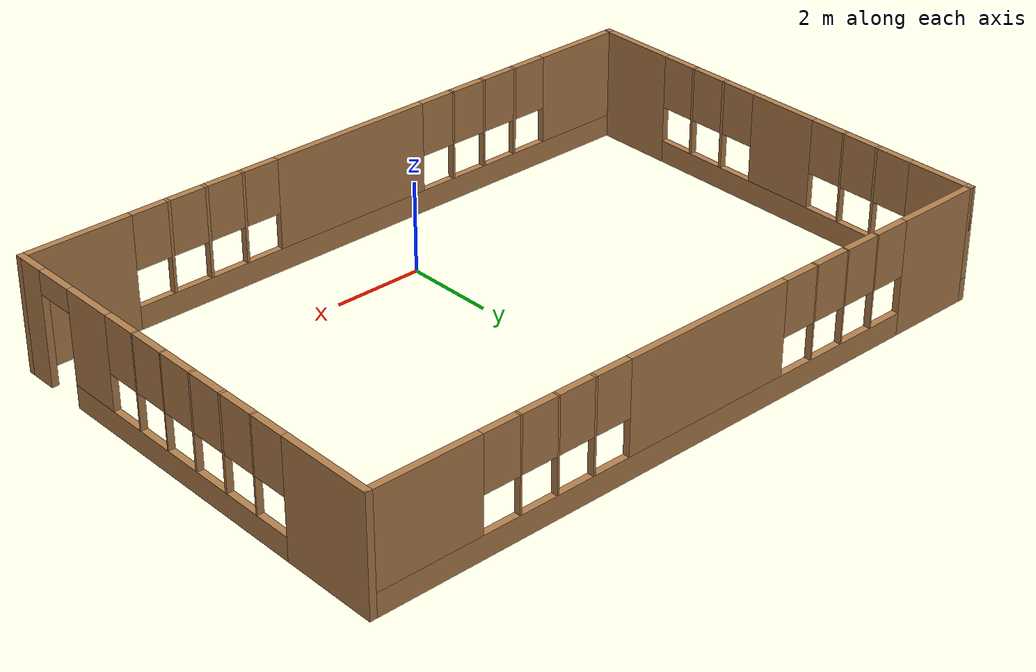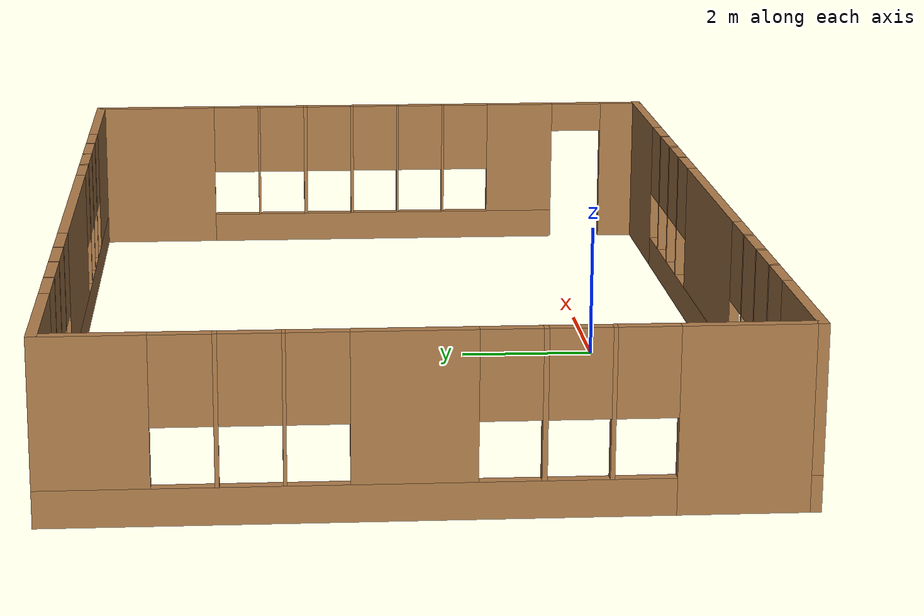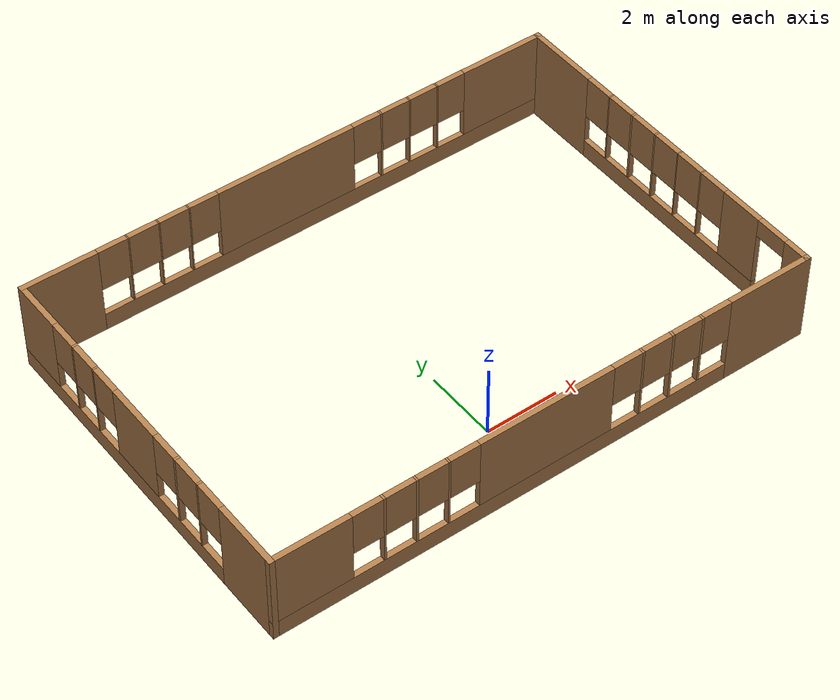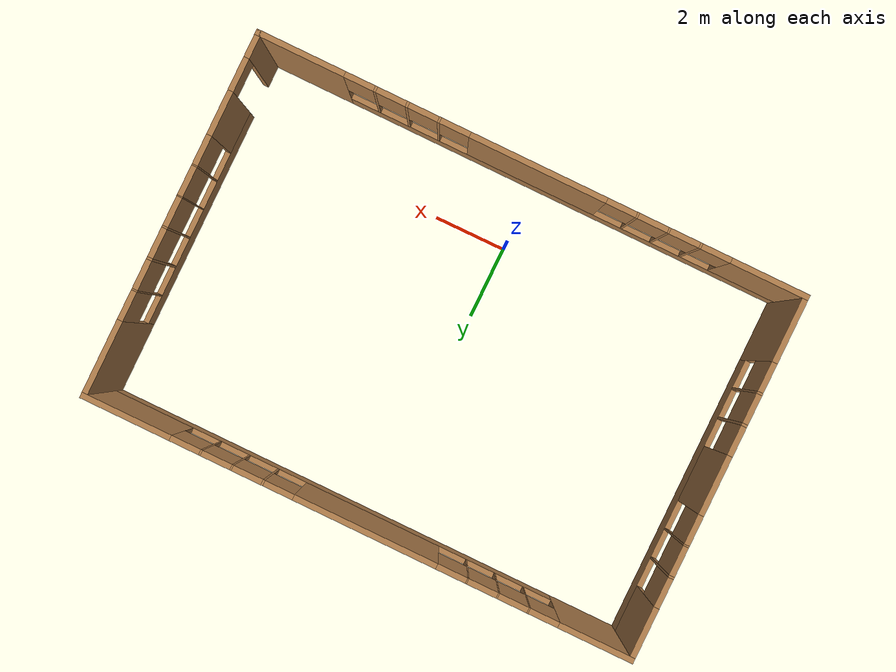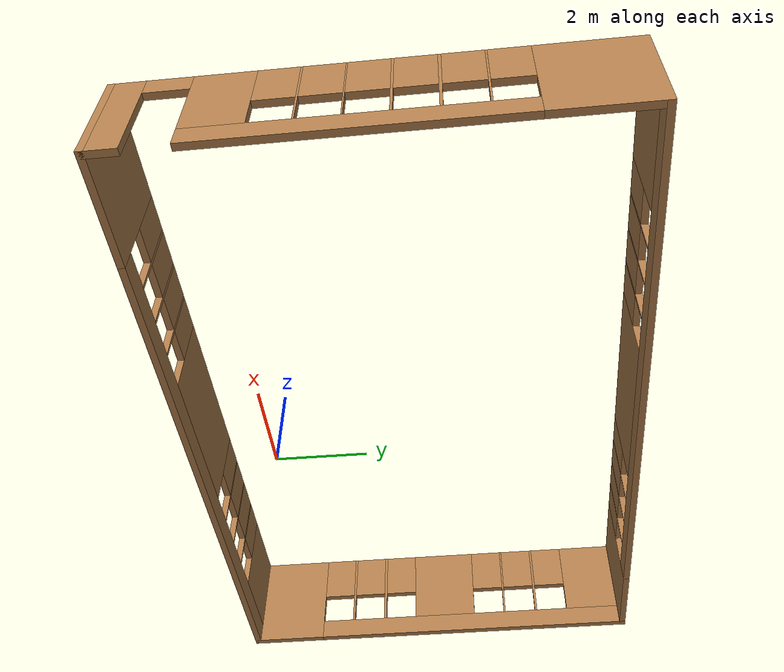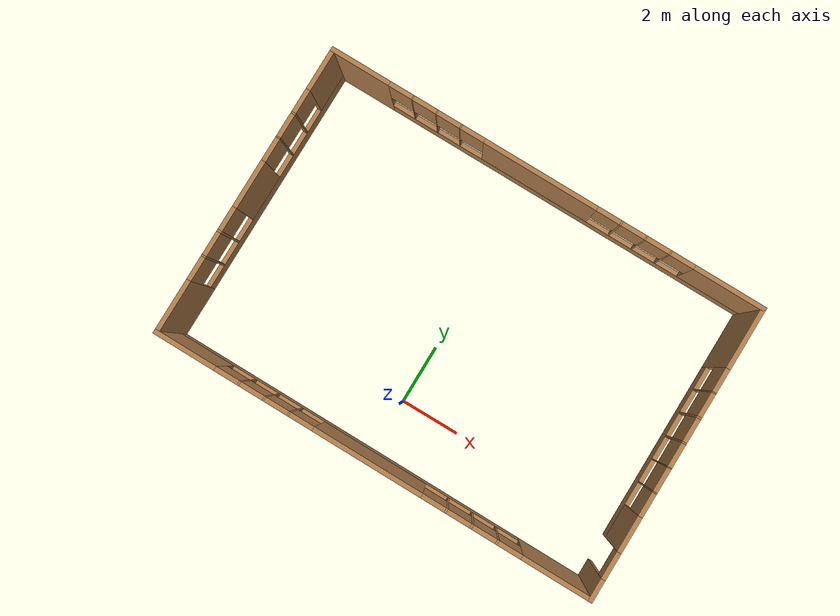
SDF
<?xml version='1.0'?>
<sdf version='1.6'>
  <model name='Building_Structure'>
    <pose frame=''>0.275 3.045 0 0 -0 0</pose>
    <link name='Wall_0'>
      <pose frame=''>0 4.925 0 0 -0 0</pose>
      <visual name='Wall_0_Visual_0'>
        <pose frame=''>-6.4786 0 1.25 0 -0 0</pose>
        <geometry>
          <box>
            <size>2.04279 0.15 2.5</size>
          </box>
        </geometry>
        <material>
          <script>
            <uri>file://media/materials/scripts/gazebo.material</uri>
            <name>Gazebo/Wood</name>
          </script>
          <ambient>0.45098 0.823529 0.0862745 1</ambient>
        </material>
        <meta>
          <layer>0</layer>
        </meta>
      </visual>
      <collision name='Wall_0_Collision_0'>
        <geometry>
          <box>
            <size>2.04279 0.15 2.5</size>
          </box>
        </geometry>
        <pose frame=''>-6.4786 0 1.25 0 -0 0</pose>
      </collision>
      <visual name='Wall_0_Visual_1'>
        <pose frame=''>1.0214 0 0.25 0 -0 0</pose>
        <geometry>
          <box>
            <size>12.9572 0.15 0.5</size>
          </box>
        </geometry>
        <material>
          <script>
            <uri>file://media/materials/scripts/gazebo.material</uri>
            <name>Gazebo/Wood</name>
          </script>
          <ambient>0.45098 0.823529 0.0862745 1</ambient>
        </material>
        <meta>
          <layer>0</layer>
        </meta>
      </visual>
      <collision name='Wall_0_Collision_1'>
        <geometry>
          <box>
            <size>12.9572 0.15 0.5</size>
          </box>
        </geometry>
        <pose frame=''>1.0214 0 0.25 0 -0 0</pose>
      </collision>
      <visual name='Wall_0_Visual_2'>
        <pose frame=''>-4.63981 0 1.5 0 -0 0</pose>
        <geometry>
          <box>
            <size>0.034782 0.15 2</size>
          </box>
        </geometry>
        <material>
          <script>
            <uri>file://media/materials/scripts/gazebo.material</uri>
            <name>Gazebo/Wood</name>
          </script>
          <ambient>0.45098 0.823529 0.0862745 1</ambient>
        </material>
        <meta>
          <layer>0</layer>
        </meta>
      </visual>
      <collision name='Wall_0_Collision_2'>
        <geometry>
          <box>
            <size>0.034782 0.15 2</size>
          </box>
        </geometry>
        <pose frame=''>-4.63981 0 1.5 0 -0 0</pose>
      </collision>
      <visual name='Wall_0_Visual_3'>
        <pose frame=''>-3.80503 0 1.5 0 -0 0</pose>
        <geometry>
          <box>
            <size>0.034783 0.15 2</size>
          </box>
        </geometry>
        <material>
          <script>
            <uri>file://media/materials/scripts/gazebo.material</uri>
            <name>Gazebo/Wood</name>
          </script>
          <ambient>0.45098 0.823529 0.0862745 1</ambient>
        </material>
        <meta>
          <layer>0</layer>
        </meta>
      </visual>
      <collision name='Wall_0_Collision_3'>
        <geometry>
          <box>
            <size>0.034783 0.15 2</size>
          </box>
        </geometry>
        <pose frame=''>-3.80503 0 1.5 0 -0 0</pose>
      </collision>
      <visual name='Wall_0_Visual_4'>
        <pose frame=''>-2.97025 0 1.5 0 -0 0</pose>
        <geometry>
          <box>
            <size>0.034783 0.15 2</size>
          </box>
        </geometry>
        <material>
          <script>
            <uri>file://media/materials/scripts/gazebo.material</uri>
            <name>Gazebo/Wood</name>
          </script>
          <ambient>0.45098 0.823529 0.0862745 1</ambient>
        </material>
        <meta>
          <layer>0</layer>
        </meta>
      </visual>
      <collision name='Wall_0_Collision_4'>
        <geometry>
          <box>
            <size>0.034783 0.15 2</size>
          </box>
        </geometry>
        <pose frame=''>-2.97025 0 1.5 0 -0 0</pose>
      </collision>
      <visual name='Wall_0_Visual_5'>
        <pose frame=''>-0.209379 0 1.5 0 -0 0</pose>
        <geometry>
          <box>
            <size>3.88696 0.15 2</size>
          </box>
        </geometry>
        <material>
          <script>
            <uri>file://media/materials/scripts/gazebo.material</uri>
            <name>Gazebo/Wood</name>
          </script>
          <ambient>0.45098 0.823529 0.0862745 1</ambient>
        </material>
        <meta>
          <layer>0</layer>
        </meta>
      </visual>
      <collision name='Wall_0_Collision_5'>
        <geometry>
          <box>
            <size>3.88696 0.15 2</size>
          </box>
        </geometry>
        <pose frame=''>-0.209379 0 1.5 0 -0 0</pose>
      </collision>
      <visual name='Wall_0_Visual_6'>
        <pose frame=''>2.56019 0 1.5 0 -0 0</pose>
        <geometry>
          <box>
            <size>0.052174 0.15 2</size>
          </box>
        </geometry>
        <material>
          <script>
            <uri>file://media/materials/scripts/gazebo.material</uri>
            <name>Gazebo/Wood</name>
          </script>
          <ambient>0.45098 0.823529 0.0862745 1</ambient>
        </material>
        <meta>
          <layer>0</layer>
        </meta>
      </visual>
      <collision name='Wall_0_Collision_6'>
        <geometry>
          <box>
            <size>0.052174 0.15 2</size>
          </box>
        </geometry>
        <pose frame=''>2.56019 0 1.5 0 -0 0</pose>
      </collision>
      <visual name='Wall_0_Visual_7'>
        <pose frame=''>3.40801 0 1.5 0 -0 0</pose>
        <geometry>
          <box>
            <size>0.043478 0.15 2</size>
          </box>
        </geometry>
        <material>
          <script>
            <uri>file://media/materials/scripts/gazebo.material</uri>
            <name>Gazebo/Wood</name>
          </script>
          <ambient>0.45098 0.823529 0.0862745 1</ambient>
        </material>
        <meta>
          <layer>0</layer>
        </meta>
      </visual>
      <collision name='Wall_0_Collision_7'>
        <geometry>
          <box>
            <size>0.043478 0.15 2</size>
          </box>
        </geometry>
        <pose frame=''>3.40801 0 1.5 0 -0 0</pose>
      </collision>
      <visual name='Wall_0_Visual_8'>
        <pose frame=''>4.25149 0 1.5 0 -0 0</pose>
        <geometry>
          <box>
            <size>0.043478 0.15 2</size>
          </box>
        </geometry>
        <material>
          <script>
            <uri>file://media/materials/scripts/gazebo.material</uri>
            <name>Gazebo/Wood</name>
          </script>
          <ambient>0.45098 0.823529 0.0862745 1</ambient>
        </material>
        <meta>
          <layer>0</layer>
        </meta>
      </visual>
      <collision name='Wall_0_Collision_8'>
        <geometry>
          <box>
            <size>0.043478 0.15 2</size>
          </box>
        </geometry>
        <pose frame=''>4.25149 0 1.5 0 -0 0</pose>
      </collision>
      <visual name='Wall_0_Visual_9'>
        <pose frame=''>6.28662 0 1.5 0 -0 0</pose>
        <geometry>
          <box>
            <size>2.42677 0.15 2</size>
          </box>
        </geometry>
        <material>
          <script>
            <uri>file://media/materials/scripts/gazebo.material</uri>
            <name>Gazebo/Wood</name>
          </script>
          <ambient>0.45098 0.823529 0.0862745 1</ambient>
        </material>
        <meta>
          <layer>0</layer>
        </meta>
      </visual>
      <collision name='Wall_0_Collision_9'>
        <geometry>
          <box>
            <size>2.42677 0.15 2</size>
          </box>
        </geometry>
        <pose frame=''>6.28662 0 1.5 0 -0 0</pose>
      </collision>
      <visual name='Wall_0_Visual_10'>
        <pose frame=''>-5.0572 0 1.9 0 -0 0</pose>
        <geometry>
          <box>
            <size>0.8 0.15 1.2</size>
          </box>
        </geometry>
        <material>
          <script>
            <uri>file://media/materials/scripts/gazebo.material</uri>
            <name>Gazebo/Wood</name>
          </script>
          <ambient>0.45098 0.823529 0.0862745 1</ambient>
        </material>
        <meta>
          <layer>0</layer>
        </meta>
      </visual>
      <collision name='Wall_0_Collision_10'>
        <geometry>
          <box>
            <size>0.8 0.15 1.2</size>
          </box>
        </geometry>
        <pose frame=''>-5.0572 0 1.9 0 -0 0</pose>
      </collision>
      <visual name='Wall_0_Visual_11'>
        <pose frame=''>-4.22242 0 1.9 0 -0 0</pose>
        <geometry>
          <box>
            <size>0.8 0.15 1.2</size>
          </box>
        </geometry>
        <material>
          <script>
            <uri>file://media/materials/scripts/gazebo.material</uri>
            <name>Gazebo/Wood</name>
          </script>
          <ambient>0.45098 0.823529 0.0862745 1</ambient>
        </material>
        <meta>
          <layer>0</layer>
        </meta>
      </visual>
      <collision name='Wall_0_Collision_11'>
        <geometry>
          <box>
            <size>0.8 0.15 1.2</size>
          </box>
        </geometry>
        <pose frame=''>-4.22242 0 1.9 0 -0 0</pose>
      </collision>
      <visual name='Wall_0_Visual_12'>
        <pose frame=''>-3.38764 0 1.9 0 -0 0</pose>
        <geometry>
          <box>
            <size>0.8 0.15 1.2</size>
          </box>
        </geometry>
        <material>
          <script>
            <uri>file://media/materials/scripts/gazebo.material</uri>
            <name>Gazebo/Wood</name>
          </script>
          <ambient>0.45098 0.823529 0.0862745 1</ambient>
        </material>
        <meta>
          <layer>0</layer>
        </meta>
      </visual>
      <collision name='Wall_0_Collision_12'>
        <geometry>
          <box>
            <size>0.8 0.15 1.2</size>
          </box>
        </geometry>
        <pose frame=''>-3.38764 0 1.9 0 -0 0</pose>
      </collision>
      <visual name='Wall_0_Visual_13'>
        <pose frame=''>-2.55286 0 1.9 0 -0 0</pose>
        <geometry>
          <box>
            <size>0.8 0.15 1.2</size>
          </box>
        </geometry>
        <material>
          <script>
            <uri>file://media/materials/scripts/gazebo.material</uri>
            <name>Gazebo/Wood</name>
          </script>
          <ambient>0.45098 0.823529 0.0862745 1</ambient>
        </material>
        <meta>
          <layer>0</layer>
        </meta>
      </visual>
      <collision name='Wall_0_Collision_13'>
        <geometry>
          <box>
            <size>0.8 0.15 1.2</size>
          </box>
        </geometry>
        <pose frame=''>-2.55286 0 1.9 0 -0 0</pose>
      </collision>
      <visual name='Wall_0_Visual_14'>
        <pose frame=''>2.1341 0 1.9 0 -0 0</pose>
        <geometry>
          <box>
            <size>0.8 0.15 1.2</size>
          </box>
        </geometry>
        <material>
          <script>
            <uri>file://media/materials/scripts/gazebo.material</uri>
            <name>Gazebo/Wood</name>
          </script>
          <ambient>0.45098 0.823529 0.0862745 1</ambient>
        </material>
        <meta>
          <layer>0</layer>
        </meta>
      </visual>
      <collision name='Wall_0_Collision_14'>
        <geometry>
          <box>
            <size>0.8 0.15 1.2</size>
          </box>
        </geometry>
        <pose frame=''>2.1341 0 1.9 0 -0 0</pose>
      </collision>
      <visual name='Wall_0_Visual_15'>
        <pose frame=''>2.98627 0 1.9 0 -0 0</pose>
        <geometry>
          <box>
            <size>0.8 0.15 1.2</size>
          </box>
        </geometry>
        <material>
          <script>
            <uri>file://media/materials/scripts/gazebo.material</uri>
            <name>Gazebo/Wood</name>
          </script>
          <ambient>0.45098 0.823529 0.0862745 1</ambient>
        </material>
        <meta>
          <layer>0</layer>
        </meta>
      </visual>
      <collision name='Wall_0_Collision_15'>
        <geometry>
          <box>
            <size>0.8 0.15 1.2</size>
          </box>
        </geometry>
        <pose frame=''>2.98627 0 1.9 0 -0 0</pose>
      </collision>
      <visual name='Wall_0_Visual_16'>
        <pose frame=''>3.82975 0 1.9 0 -0 0</pose>
        <geometry>
          <box>
            <size>0.8 0.15 1.2</size>
          </box>
        </geometry>
        <material>
          <script>
            <uri>file://media/materials/scripts/gazebo.material</uri>
            <name>Gazebo/Wood</name>
          </script>
          <ambient>0.45098 0.823529 0.0862745 1</ambient>
        </material>
        <meta>
          <layer>0</layer>
        </meta>
      </visual>
      <collision name='Wall_0_Collision_16'>
        <geometry>
          <box>
            <size>0.8 0.15 1.2</size>
          </box>
        </geometry>
        <pose frame=''>3.82975 0 1.9 0 -0 0</pose>
      </collision>
      <visual name='Wall_0_Visual_17'>
        <pose frame=''>4.67323 0 1.9 0 -0 0</pose>
        <geometry>
          <box>
            <size>0.8 0.15 1.2</size>
          </box>
        </geometry>
        <material>
          <script>
            <uri>file://media/materials/scripts/gazebo.material</uri>
            <name>Gazebo/Wood</name>
          </script>
          <ambient>0.45098 0.823529 0.0862745 1</ambient>
        </material>
        <meta>
          <layer>0</layer>
        </meta>
      </visual>
      <collision name='Wall_0_Collision_17'>
        <geometry>
          <box>
            <size>0.8 0.15 1.2</size>
          </box>
        </geometry>
        <pose frame=''>4.67323 0 1.9 0 -0 0</pose>
      </collision>
    </link>
    <link name='Wall_1'>
      <pose frame=''>7.425 0 0 0 -0 -1.5708</pose>
      <visual name='Wall_1_Visual_0'>
        <pose frame=''>-3.93576 0 1.25 0 -0 0</pose>
        <geometry>
          <box>
            <size>2.12849 0.15 2.5</size>
          </box>
        </geometry>
        <material>
          <script>
            <uri>file://media/materials/scripts/gazebo.material</uri>
            <name>Gazebo/Wood</name>
          </script>
          <ambient>1 1 1 1</ambient>
        </material>
        <meta>
          <layer>0</layer>
        </meta>
      </visual>
      <collision name='Wall_1_Collision_0'>
        <geometry>
          <box>
            <size>2.12849 0.15 2.5</size>
          </box>
        </geometry>
        <pose frame=''>-3.93576 0 1.25 0 -0 0</pose>
      </collision>
      <visual name='Wall_1_Visual_1'>
        <pose frame=''>4.62424 0 1.25 0 -0 0</pose>
        <geometry>
          <box>
            <size>0.751513 0.15 2.5</size>
          </box>
        </geometry>
        <material>
          <script>
            <uri>file://media/materials/scripts/gazebo.material</uri>
            <name>Gazebo/Wood</name>
          </script>
          <ambient>1 1 1 1</ambient>
        </material>
        <meta>
          <layer>0</layer>
        </meta>
      </visual>
      <collision name='Wall_1_Collision_1'>
        <geometry>
          <box>
            <size>0.751513 0.15 2.5</size>
          </box>
        </geometry>
        <pose frame=''>4.62424 0 1.25 0 -0 0</pose>
      </collision>
      <visual name='Wall_1_Visual_2'>
        <pose frame=''>0.238487 0 0.25 0 -0 0</pose>
        <geometry>
          <box>
            <size>6.22 0.15 0.5</size>
          </box>
        </geometry>
        <material>
          <script>
            <uri>file://media/materials/scripts/gazebo.material</uri>
            <name>Gazebo/Wood</name>
          </script>
          <ambient>1 1 1 1</ambient>
        </material>
        <meta>
          <layer>0</layer>
        </meta>
      </visual>
      <collision name='Wall_1_Collision_2'>
        <geometry>
          <box>
            <size>6.22 0.15 0.5</size>
          </box>
        </geometry>
        <pose frame=''>0.238487 0 0.25 0 -0 0</pose>
      </collision>
      <visual name='Wall_1_Visual_3'>
        <pose frame=''>-2.05151 0 1.5 0 -0 0</pose>
        <geometry>
          <box>
            <size>0.04 0.15 2</size>
          </box>
        </geometry>
        <material>
          <script>
            <uri>file://media/materials/scripts/gazebo.material</uri>
            <name>Gazebo/Wood</name>
          </script>
          <ambient>1 1 1 1</ambient>
        </material>
        <meta>
          <layer>0</layer>
        </meta>
      </visual>
      <collision name='Wall_1_Collision_3'>
        <geometry>
          <box>
            <size>0.04 0.15 2</size>
          </box>
        </geometry>
        <pose frame=''>-2.05151 0 1.5 0 -0 0</pose>
      </collision>
      <visual name='Wall_1_Visual_4'>
        <pose frame=''>-1.20151 0 1.5 0 -0 0</pose>
        <geometry>
          <box>
            <size>0.06 0.15 2</size>
          </box>
        </geometry>
        <material>
          <script>
            <uri>file://media/materials/scripts/gazebo.material</uri>
            <name>Gazebo/Wood</name>
          </script>
          <ambient>1 1 1 1</ambient>
        </material>
        <meta>
          <layer>0</layer>
        </meta>
      </visual>
      <collision name='Wall_1_Collision_4'>
        <geometry>
          <box>
            <size>0.06 0.15 2</size>
          </box>
        </geometry>
        <pose frame=''>-1.20151 0 1.5 0 -0 0</pose>
      </collision>
      <visual name='Wall_1_Visual_5'>
        <pose frame=''>-0.346514 0 1.5 0 -0 0</pose>
        <geometry>
          <box>
            <size>0.05 0.15 2</size>
          </box>
        </geometry>
        <material>
          <script>
            <uri>file://media/materials/scripts/gazebo.material</uri>
            <name>Gazebo/Wood</name>
          </script>
          <ambient>1 1 1 1</ambient>
        </material>
        <meta>
          <layer>0</layer>
        </meta>
      </visual>
      <collision name='Wall_1_Collision_5'>
        <geometry>
          <box>
            <size>0.05 0.15 2</size>
          </box>
        </geometry>
        <pose frame=''>-0.346514 0 1.5 0 -0 0</pose>
      </collision>
      <visual name='Wall_1_Visual_6'>
        <pose frame=''>0.493487 0 1.5 0 -0 0</pose>
        <geometry>
          <box>
            <size>0.03 0.15 2</size>
          </box>
        </geometry>
        <material>
          <script>
            <uri>file://media/materials/scripts/gazebo.material</uri>
            <name>Gazebo/Wood</name>
          </script>
          <ambient>1 1 1 1</ambient>
        </material>
        <meta>
          <layer>0</layer>
        </meta>
      </visual>
      <collision name='Wall_1_Collision_6'>
        <geometry>
          <box>
            <size>0.03 0.15 2</size>
          </box>
        </geometry>
        <pose frame=''>0.493487 0 1.5 0 -0 0</pose>
      </collision>
      <visual name='Wall_1_Visual_7'>
        <pose frame=''>1.32849 0 1.5 0 -0 0</pose>
        <geometry>
          <box>
            <size>0.04 0.15 2</size>
          </box>
        </geometry>
        <material>
          <script>
            <uri>file://media/materials/scripts/gazebo.material</uri>
            <name>Gazebo/Wood</name>
          </script>
          <ambient>1 1 1 1</ambient>
        </material>
        <meta>
          <layer>0</layer>
        </meta>
      </visual>
      <collision name='Wall_1_Collision_7'>
        <geometry>
          <box>
            <size>0.04 0.15 2</size>
          </box>
        </geometry>
        <pose frame=''>1.32849 0 1.5 0 -0 0</pose>
      </collision>
      <visual name='Wall_1_Visual_8'>
        <pose frame=''>2.74849 0 1.5 0 -0 0</pose>
        <geometry>
          <box>
            <size>1.2 0.15 2</size>
          </box>
        </geometry>
        <material>
          <script>
            <uri>file://media/materials/scripts/gazebo.material</uri>
            <name>Gazebo/Wood</name>
          </script>
          <ambient>1 1 1 1</ambient>
        </material>
        <meta>
          <layer>0</layer>
        </meta>
      </visual>
      <collision name='Wall_1_Collision_8'>
        <geometry>
          <box>
            <size>1.2 0.15 2</size>
          </box>
        </geometry>
        <pose frame=''>2.74849 0 1.5 0 -0 0</pose>
      </collision>
      <visual name='Wall_1_Visual_9'>
        <pose frame=''>-2.47151 0 1.9 0 -0 0</pose>
        <geometry>
          <box>
            <size>0.8 0.15 1.2</size>
          </box>
        </geometry>
        <material>
          <script>
            <uri>file://media/materials/scripts/gazebo.material</uri>
            <name>Gazebo/Wood</name>
          </script>
          <ambient>1 1 1 1</ambient>
        </material>
        <meta>
          <layer>0</layer>
        </meta>
      </visual>
      <collision name='Wall_1_Collision_9'>
        <geometry>
          <box>
            <size>0.8 0.15 1.2</size>
          </box>
        </geometry>
        <pose frame=''>-2.47151 0 1.9 0 -0 0</pose>
      </collision>
      <visual name='Wall_1_Visual_10'>
        <pose frame=''>-1.63151 0 1.9 0 -0 0</pose>
        <geometry>
          <box>
            <size>0.8 0.15 1.2</size>
          </box>
        </geometry>
        <material>
          <script>
            <uri>file://media/materials/scripts/gazebo.material</uri>
            <name>Gazebo/Wood</name>
          </script>
          <ambient>1 1 1 1</ambient>
        </material>
        <meta>
          <layer>0</layer>
        </meta>
      </visual>
      <collision name='Wall_1_Collision_10'>
        <geometry>
          <box>
            <size>0.8 0.15 1.2</size>
          </box>
        </geometry>
        <pose frame=''>-1.63151 0 1.9 0 -0 0</pose>
      </collision>
      <visual name='Wall_1_Visual_11'>
        <pose frame=''>-0.771513 0 1.9 0 -0 0</pose>
        <geometry>
          <box>
            <size>0.8 0.15 1.2</size>
          </box>
        </geometry>
        <material>
          <script>
            <uri>file://media/materials/scripts/gazebo.material</uri>
            <name>Gazebo/Wood</name>
          </script>
          <ambient>1 1 1 1</ambient>
        </material>
        <meta>
          <layer>0</layer>
        </meta>
      </visual>
      <collision name='Wall_1_Collision_11'>
        <geometry>
          <box>
            <size>0.8 0.15 1.2</size>
          </box>
        </geometry>
        <pose frame=''>-0.771513 0 1.9 0 -0 0</pose>
      </collision>
      <visual name='Wall_1_Visual_12'>
        <pose frame=''>0.078486 0 1.9 0 -0 0</pose>
        <geometry>
          <box>
            <size>0.8 0.15 1.2</size>
          </box>
        </geometry>
        <material>
          <script>
            <uri>file://media/materials/scripts/gazebo.material</uri>
            <name>Gazebo/Wood</name>
          </script>
          <ambient>1 1 1 1</ambient>
        </material>
        <meta>
          <layer>0</layer>
        </meta>
      </visual>
      <collision name='Wall_1_Collision_12'>
        <geometry>
          <box>
            <size>0.8 0.15 1.2</size>
          </box>
        </geometry>
        <pose frame=''>0.078486 0 1.9 0 -0 0</pose>
      </collision>
      <visual name='Wall_1_Visual_13'>
        <pose frame=''>0.908487 0 1.9 0 -0 0</pose>
        <geometry>
          <box>
            <size>0.8 0.15 1.2</size>
          </box>
        </geometry>
        <material>
          <script>
            <uri>file://media/materials/scripts/gazebo.material</uri>
            <name>Gazebo/Wood</name>
          </script>
          <ambient>1 1 1 1</ambient>
        </material>
        <meta>
          <layer>0</layer>
        </meta>
      </visual>
      <collision name='Wall_1_Collision_13'>
        <geometry>
          <box>
            <size>0.8 0.15 1.2</size>
          </box>
        </geometry>
        <pose frame=''>0.908487 0 1.9 0 -0 0</pose>
      </collision>
      <visual name='Wall_1_Visual_14'>
        <pose frame=''>1.74849 0 1.9 0 -0 0</pose>
        <geometry>
          <box>
            <size>0.8 0.15 1.2</size>
          </box>
        </geometry>
        <material>
          <script>
            <uri>file://media/materials/scripts/gazebo.material</uri>
            <name>Gazebo/Wood</name>
          </script>
          <ambient>1 1 1 1</ambient>
        </material>
        <meta>
          <layer>0</layer>
        </meta>
      </visual>
      <collision name='Wall_1_Collision_14'>
        <geometry>
          <box>
            <size>0.8 0.15 1.2</size>
          </box>
        </geometry>
        <pose frame=''>1.74849 0 1.9 0 -0 0</pose>
      </collision>
      <visual name='Wall_1_Visual_15'>
        <pose frame=''>3.79849 0 2.25 0 -0 0</pose>
        <geometry>
          <box>
            <size>0.9 0.15 0.5</size>
          </box>
        </geometry>
        <material>
          <script>
            <uri>file://media/materials/scripts/gazebo.material</uri>
            <name>Gazebo/Wood</name>
          </script>
          <ambient>1 1 1 1</ambient>
        </material>
        <meta>
          <layer>0</layer>
        </meta>
      </visual>
      <collision name='Wall_1_Collision_15'>
        <geometry>
          <box>
            <size>0.9 0.15 0.5</size>
          </box>
        </geometry>
        <pose frame=''>3.79849 0 2.25 0 -0 0</pose>
      </collision>
    </link>
    <link name='Wall_2'>
      <pose frame=''>0 -4.925 0 0 -0 3.14159</pose>
      <visual name='Wall_2_Visual_0'>
        <pose frame=''>-6.2957 0 1.25 0 -0 0</pose>
        <geometry>
          <box>
            <size>2.4086 0.15 2.5</size>
          </box>
        </geometry>
        <material>
          <script>
            <uri>file://media/materials/scripts/gazebo.material</uri>
            <name>Gazebo/Wood</name>
          </script>
          <ambient>0.45098 0.823529 0.0862745 1</ambient>
        </material>
        <meta>
          <layer>0</layer>
        </meta>
      </visual>
      <collision name='Wall_2_Collision_0'>
        <geometry>
          <box>
            <size>2.4086 0.15 2.5</size>
          </box>
        </geometry>
        <pose frame=''>-6.2957 0 1.25 0 -0 0</pose>
      </collision>
      <visual name='Wall_2_Visual_1'>
        <pose frame=''>1.2043 0 0.25 0 -0 0</pose>
        <geometry>
          <box>
            <size>12.5914 0.15 0.5</size>
          </box>
        </geometry>
        <material>
          <script>
            <uri>file://media/materials/scripts/gazebo.material</uri>
            <name>Gazebo/Wood</name>
          </script>
          <ambient>0.45098 0.823529 0.0862745 1</ambient>
        </material>
        <meta>
          <layer>0</layer>
        </meta>
      </visual>
      <collision name='Wall_2_Collision_1'>
        <geometry>
          <box>
            <size>12.5914 0.15 0.5</size>
          </box>
        </geometry>
        <pose frame=''>1.2043 0 0.25 0 -0 0</pose>
      </collision>
      <visual name='Wall_2_Visual_2'>
        <pose frame=''>-4.25752 0 1.5 0 -0 0</pose>
        <geometry>
          <box>
            <size>0.06776 0.15 2</size>
          </box>
        </geometry>
        <material>
          <script>
            <uri>file://media/materials/scripts/gazebo.material</uri>
            <name>Gazebo/Wood</name>
          </script>
          <ambient>0.45098 0.823529 0.0862745 1</ambient>
        </material>
        <meta>
          <layer>0</layer>
        </meta>
      </visual>
      <collision name='Wall_2_Collision_2'>
        <geometry>
          <box>
            <size>0.06776 0.15 2</size>
          </box>
        </geometry>
        <pose frame=''>-4.25752 0 1.5 0 -0 0</pose>
      </collision>
      <visual name='Wall_2_Visual_3'>
        <pose frame=''>-3.38886 0 1.5 0 -0 0</pose>
        <geometry>
          <box>
            <size>0.069565 0.15 2</size>
          </box>
        </geometry>
        <material>
          <script>
            <uri>file://media/materials/scripts/gazebo.material</uri>
            <name>Gazebo/Wood</name>
          </script>
          <ambient>0.45098 0.823529 0.0862745 1</ambient>
        </material>
        <meta>
          <layer>0</layer>
        </meta>
      </visual>
      <collision name='Wall_2_Collision_3'>
        <geometry>
          <box>
            <size>0.069565 0.15 2</size>
          </box>
        </geometry>
        <pose frame=''>-3.38886 0 1.5 0 -0 0</pose>
      </collision>
      <visual name='Wall_2_Visual_4'>
        <pose frame=''>-2.52308 0 1.5 0 -0 0</pose>
        <geometry>
          <box>
            <size>0.062004 0.15 2</size>
          </box>
        </geometry>
        <material>
          <script>
            <uri>file://media/materials/scripts/gazebo.material</uri>
            <name>Gazebo/Wood</name>
          </script>
          <ambient>0.45098 0.823529 0.0862745 1</ambient>
        </material>
        <meta>
          <layer>0</layer>
        </meta>
      </visual>
      <collision name='Wall_2_Collision_4'>
        <geometry>
          <box>
            <size>0.062004 0.15 2</size>
          </box>
        </geometry>
        <pose frame=''>-2.52308 0 1.5 0 -0 0</pose>
      </collision>
      <visual name='Wall_2_Visual_5'>
        <pose frame=''>0.164065 0 1.5 0 -0 0</pose>
        <geometry>
          <box>
            <size>3.71228 0.15 2</size>
          </box>
        </geometry>
        <material>
          <script>
            <uri>file://media/materials/scripts/gazebo.material</uri>
            <name>Gazebo/Wood</name>
          </script>
          <ambient>0.45098 0.823529 0.0862745 1</ambient>
        </material>
        <meta>
          <layer>0</layer>
        </meta>
      </visual>
      <collision name='Wall_2_Collision_5'>
        <geometry>
          <box>
            <size>3.71228 0.15 2</size>
          </box>
        </geometry>
        <pose frame=''>0.164065 0 1.5 0 -0 0</pose>
      </collision>
      <visual name='Wall_2_Visual_6'>
        <pose frame=''>2.84759 0 1.5 0 -0 0</pose>
        <geometry>
          <box>
            <size>0.054771 0.15 2</size>
          </box>
        </geometry>
        <material>
          <script>
            <uri>file://media/materials/scripts/gazebo.material</uri>
            <name>Gazebo/Wood</name>
          </script>
          <ambient>0.45098 0.823529 0.0862745 1</ambient>
        </material>
        <meta>
          <layer>0</layer>
        </meta>
      </visual>
      <collision name='Wall_2_Collision_6'>
        <geometry>
          <box>
            <size>0.054771 0.15 2</size>
          </box>
        </geometry>
        <pose frame=''>2.84759 0 1.5 0 -0 0</pose>
      </collision>
      <visual name='Wall_2_Visual_7'>
        <pose frame=''>3.70236 0 1.5 0 -0 0</pose>
        <geometry>
          <box>
            <size>0.054771 0.15 2</size>
          </box>
        </geometry>
        <material>
          <script>
            <uri>file://media/materials/scripts/gazebo.material</uri>
            <name>Gazebo/Wood</name>
          </script>
          <ambient>0.45098 0.823529 0.0862745 1</ambient>
        </material>
        <meta>
          <layer>0</layer>
        </meta>
      </visual>
      <collision name='Wall_2_Collision_7'>
        <geometry>
          <box>
            <size>0.054771 0.15 2</size>
          </box>
        </geometry>
        <pose frame=''>3.70236 0 1.5 0 -0 0</pose>
      </collision>
      <visual name='Wall_2_Visual_8'>
        <pose frame=''>4.56045 0 1.5 0 -0 0</pose>
        <geometry>
          <box>
            <size>0.06141 0.15 2</size>
          </box>
        </geometry>
        <material>
          <script>
            <uri>file://media/materials/scripts/gazebo.material</uri>
            <name>Gazebo/Wood</name>
          </script>
          <ambient>0.45098 0.823529 0.0862745 1</ambient>
        </material>
        <meta>
          <layer>0</layer>
        </meta>
      </visual>
      <collision name='Wall_2_Collision_8'>
        <geometry>
          <box>
            <size>0.06141 0.15 2</size>
          </box>
        </geometry>
        <pose frame=''>4.56045 0 1.5 0 -0 0</pose>
      </collision>
      <visual name='Wall_2_Visual_9'>
        <pose frame=''>6.44558 0 1.5 0 -0 0</pose>
        <geometry>
          <box>
            <size>2.10884 0.15 2</size>
          </box>
        </geometry>
        <material>
          <script>
            <uri>file://media/materials/scripts/gazebo.material</uri>
            <name>Gazebo/Wood</name>
          </script>
          <ambient>0.45098 0.823529 0.0862745 1</ambient>
        </material>
        <meta>
          <layer>0</layer>
        </meta>
      </visual>
      <collision name='Wall_2_Collision_9'>
        <geometry>
          <box>
            <size>2.10884 0.15 2</size>
          </box>
        </geometry>
        <pose frame=''>6.44558 0 1.5 0 -0 0</pose>
      </collision>
      <visual name='Wall_2_Visual_10'>
        <pose frame=''>-4.6914 0 1.9 0 -0 0</pose>
        <geometry>
          <box>
            <size>0.8 0.15 1.2</size>
          </box>
        </geometry>
        <material>
          <script>
            <uri>file://media/materials/scripts/gazebo.material</uri>
            <name>Gazebo/Wood</name>
          </script>
          <ambient>0.45098 0.823529 0.0862745 1</ambient>
        </material>
        <meta>
          <layer>0</layer>
        </meta>
      </visual>
      <collision name='Wall_2_Collision_10'>
        <geometry>
          <box>
            <size>0.8 0.15 1.2</size>
          </box>
        </geometry>
        <pose frame=''>-4.6914 0 1.9 0 -0 0</pose>
      </collision>
      <visual name='Wall_2_Visual_11'>
        <pose frame=''>-3.82364 0 1.9 0 -0 0</pose>
        <geometry>
          <box>
            <size>0.8 0.15 1.2</size>
          </box>
        </geometry>
        <material>
          <script>
            <uri>file://media/materials/scripts/gazebo.material</uri>
            <name>Gazebo/Wood</name>
          </script>
          <ambient>0.45098 0.823529 0.0862745 1</ambient>
        </material>
        <meta>
          <layer>0</layer>
        </meta>
      </visual>
      <collision name='Wall_2_Collision_11'>
        <geometry>
          <box>
            <size>0.8 0.15 1.2</size>
          </box>
        </geometry>
        <pose frame=''>-3.82364 0 1.9 0 -0 0</pose>
      </collision>
      <visual name='Wall_2_Visual_12'>
        <pose frame=''>-2.95408 0 1.9 0 -0 0</pose>
        <geometry>
          <box>
            <size>0.8 0.15 1.2</size>
          </box>
        </geometry>
        <material>
          <script>
            <uri>file://media/materials/scripts/gazebo.material</uri>
            <name>Gazebo/Wood</name>
          </script>
          <ambient>0.45098 0.823529 0.0862745 1</ambient>
        </material>
        <meta>
          <layer>0</layer>
        </meta>
      </visual>
      <collision name='Wall_2_Collision_12'>
        <geometry>
          <box>
            <size>0.8 0.15 1.2</size>
          </box>
        </geometry>
        <pose frame=''>-2.95408 0 1.9 0 -0 0</pose>
      </collision>
      <visual name='Wall_2_Visual_13'>
        <pose frame=''>-2.09207 0 1.9 0 -0 0</pose>
        <geometry>
          <box>
            <size>0.8 0.15 1.2</size>
          </box>
        </geometry>
        <material>
          <script>
            <uri>file://media/materials/scripts/gazebo.material</uri>
            <name>Gazebo/Wood</name>
          </script>
          <ambient>0.45098 0.823529 0.0862745 1</ambient>
        </material>
        <meta>
          <layer>0</layer>
        </meta>
      </visual>
      <collision name='Wall_2_Collision_13'>
        <geometry>
          <box>
            <size>0.8 0.15 1.2</size>
          </box>
        </geometry>
        <pose frame=''>-2.09207 0 1.9 0 -0 0</pose>
      </collision>
      <visual name='Wall_2_Visual_14'>
        <pose frame=''>2.42021 0 1.9 0 -0 0</pose>
        <geometry>
          <box>
            <size>0.8 0.15 1.2</size>
          </box>
        </geometry>
        <material>
          <script>
            <uri>file://media/materials/scripts/gazebo.material</uri>
            <name>Gazebo/Wood</name>
          </script>
          <ambient>0.45098 0.823529 0.0862745 1</ambient>
        </material>
        <meta>
          <layer>0</layer>
        </meta>
      </visual>
      <collision name='Wall_2_Collision_14'>
        <geometry>
          <box>
            <size>0.8 0.15 1.2</size>
          </box>
        </geometry>
        <pose frame=''>2.42021 0 1.9 0 -0 0</pose>
      </collision>
      <visual name='Wall_2_Visual_15'>
        <pose frame=''>3.27498 0 1.9 0 -0 0</pose>
        <geometry>
          <box>
            <size>0.8 0.15 1.2</size>
          </box>
        </geometry>
        <material>
          <script>
            <uri>file://media/materials/scripts/gazebo.material</uri>
            <name>Gazebo/Wood</name>
          </script>
          <ambient>0.45098 0.823529 0.0862745 1</ambient>
        </material>
        <meta>
          <layer>0</layer>
        </meta>
      </visual>
      <collision name='Wall_2_Collision_15'>
        <geometry>
          <box>
            <size>0.8 0.15 1.2</size>
          </box>
        </geometry>
        <pose frame=''>3.27498 0 1.9 0 -0 0</pose>
      </collision>
      <visual name='Wall_2_Visual_16'>
        <pose frame=''>4.12975 0 1.9 0 -0 0</pose>
        <geometry>
          <box>
            <size>0.8 0.15 1.2</size>
          </box>
        </geometry>
        <material>
          <script>
            <uri>file://media/materials/scripts/gazebo.material</uri>
            <name>Gazebo/Wood</name>
          </script>
          <ambient>0.45098 0.823529 0.0862745 1</ambient>
        </material>
        <meta>
          <layer>0</layer>
        </meta>
      </visual>
      <collision name='Wall_2_Collision_16'>
        <geometry>
          <box>
            <size>0.8 0.15 1.2</size>
          </box>
        </geometry>
        <pose frame=''>4.12975 0 1.9 0 -0 0</pose>
      </collision>
      <visual name='Wall_2_Visual_17'>
        <pose frame=''>4.99116 0 1.9 0 -0 0</pose>
        <geometry>
          <box>
            <size>0.8 0.15 1.2</size>
          </box>
        </geometry>
        <material>
          <script>
            <uri>file://media/materials/scripts/gazebo.material</uri>
            <name>Gazebo/Wood</name>
          </script>
          <ambient>0.45098 0.823529 0.0862745 1</ambient>
        </material>
        <meta>
          <layer>0</layer>
        </meta>
      </visual>
      <collision name='Wall_2_Collision_17'>
        <geometry>
          <box>
            <size>0.8 0.15 1.2</size>
          </box>
        </geometry>
        <pose frame=''>4.99116 0 1.9 0 -0 0</pose>
      </collision>
    </link>
    <link name='Wall_3'>
      <pose frame=''>-7.425 0 0 0 -0 1.5708</pose>
      <visual name='Wall_3_Visual_0'>
        <pose frame=''>-4.06711 0 1.25 0 -0 0</pose>
        <geometry>
          <box>
            <size>1.86578 0.15 2.5</size>
          </box>
        </geometry>
        <material>
          <script>
            <uri>file://media/materials/scripts/gazebo.material</uri>
            <name>Gazebo/Wood</name>
          </script>
          <ambient>0.45098 0.823529 0.0862745 1</ambient>
        </material>
        <meta>
          <layer>0</layer>
        </meta>
      </visual>
      <collision name='Wall_3_Collision_0'>
        <geometry>
          <box>
            <size>1.86578 0.15 2.5</size>
          </box>
        </geometry>
        <pose frame=''>-4.06711 0 1.25 0 -0 0</pose>
      </collision>
      <visual name='Wall_3_Visual_1'>
        <pose frame=''>0.932889 0 0.25 0 -0 0</pose>
        <geometry>
          <box>
            <size>8.13422 0.15 0.5</size>
          </box>
        </geometry>
        <material>
          <script>
            <uri>file://media/materials/scripts/gazebo.material</uri>
            <name>Gazebo/Wood</name>
          </script>
          <ambient>0.45098 0.823529 0.0862745 1</ambient>
        </material>
        <meta>
          <layer>0</layer>
        </meta>
      </visual>
      <collision name='Wall_3_Collision_1'>
        <geometry>
          <box>
            <size>8.13422 0.15 0.5</size>
          </box>
        </geometry>
        <pose frame=''>0.932889 0 0.25 0 -0 0</pose>
      </collision>
      <visual name='Wall_3_Visual_2'>
        <pose frame=''>-2.30541 0 1.5 0 -0 0</pose>
        <geometry>
          <box>
            <size>0.05763 0.15 2</size>
          </box>
        </geometry>
        <material>
          <script>
            <uri>file://media/materials/scripts/gazebo.material</uri>
            <name>Gazebo/Wood</name>
          </script>
          <ambient>0.45098 0.823529 0.0862745 1</ambient>
        </material>
        <meta>
          <layer>0</layer>
        </meta>
      </visual>
      <collision name='Wall_3_Collision_2'>
        <geometry>
          <box>
            <size>0.05763 0.15 2</size>
          </box>
        </geometry>
        <pose frame=''>-2.30541 0 1.5 0 -0 0</pose>
      </collision>
      <visual name='Wall_3_Visual_3'>
        <pose frame=''>-1.44206 0 1.5 0 -0 0</pose>
        <geometry>
          <box>
            <size>0.069065 0.15 2</size>
          </box>
        </geometry>
        <material>
          <script>
            <uri>file://media/materials/scripts/gazebo.material</uri>
            <name>Gazebo/Wood</name>
          </script>
          <ambient>0.45098 0.823529 0.0862745 1</ambient>
        </material>
        <meta>
          <layer>0</layer>
        </meta>
      </visual>
      <collision name='Wall_3_Collision_3'>
        <geometry>
          <box>
            <size>0.069065 0.15 2</size>
          </box>
        </geometry>
        <pose frame=''>-1.44206 0 1.5 0 -0 0</pose>
      </collision>
      <visual name='Wall_3_Visual_4'>
        <pose frame=''>0.198872 0 1.5 0 -0 0</pose>
        <geometry>
          <box>
            <size>1.6128 0.15 2</size>
          </box>
        </geometry>
        <material>
          <script>
            <uri>file://media/materials/scripts/gazebo.material</uri>
            <name>Gazebo/Wood</name>
          </script>
          <ambient>0.45098 0.823529 0.0862745 1</ambient>
        </material>
        <meta>
          <layer>0</layer>
        </meta>
      </visual>
      <collision name='Wall_3_Collision_4'>
        <geometry>
          <box>
            <size>1.6128 0.15 2</size>
          </box>
        </geometry>
        <pose frame=''>0.198872 0 1.5 0 -0 0</pose>
      </collision>
      <visual name='Wall_3_Visual_5'>
        <pose frame=''>1.82837 0 1.5 0 -0 0</pose>
        <geometry>
          <box>
            <size>0.046195 0.15 2</size>
          </box>
        </geometry>
        <material>
          <script>
            <uri>file://media/materials/scripts/gazebo.material</uri>
            <name>Gazebo/Wood</name>
          </script>
          <ambient>0.45098 0.823529 0.0862745 1</ambient>
        </material>
        <meta>
          <layer>0</layer>
        </meta>
      </visual>
      <collision name='Wall_3_Collision_5'>
        <geometry>
          <box>
            <size>0.046195 0.15 2</size>
          </box>
        </geometry>
        <pose frame=''>1.82837 0 1.5 0 -0 0</pose>
      </collision>
      <visual name='Wall_3_Visual_6'>
        <pose frame=''>2.68028 0 1.5 0 -0 0</pose>
        <geometry>
          <box>
            <size>0.05763 0.15 2</size>
          </box>
        </geometry>
        <material>
          <script>
            <uri>file://media/materials/scripts/gazebo.material</uri>
            <name>Gazebo/Wood</name>
          </script>
          <ambient>0.45098 0.823529 0.0862745 1</ambient>
        </material>
        <meta>
          <layer>0</layer>
        </meta>
      </visual>
      <collision name='Wall_3_Collision_6'>
        <geometry>
          <box>
            <size>0.05763 0.15 2</size>
          </box>
        </geometry>
        <pose frame=''>2.68028 0 1.5 0 -0 0</pose>
      </collision>
      <visual name='Wall_3_Visual_7'>
        <pose frame=''>4.25455 0 1.5 0 -0 0</pose>
        <geometry>
          <box>
            <size>1.4909 0.15 2</size>
          </box>
        </geometry>
        <material>
          <script>
            <uri>file://media/materials/scripts/gazebo.material</uri>
            <name>Gazebo/Wood</name>
          </script>
          <ambient>0.45098 0.823529 0.0862745 1</ambient>
        </material>
        <meta>
          <layer>0</layer>
        </meta>
      </visual>
      <collision name='Wall_3_Collision_7'>
        <geometry>
          <box>
            <size>1.4909 0.15 2</size>
          </box>
        </geometry>
        <pose frame=''>4.25455 0 1.5 0 -0 0</pose>
      </collision>
      <visual name='Wall_3_Visual_8'>
        <pose frame=''>-2.73422 0 1.9 0 -0 0</pose>
        <geometry>
          <box>
            <size>0.8 0.15 1.2</size>
          </box>
        </geometry>
        <material>
          <script>
            <uri>file://media/materials/scripts/gazebo.material</uri>
            <name>Gazebo/Wood</name>
          </script>
          <ambient>0.45098 0.823529 0.0862745 1</ambient>
        </material>
        <meta>
          <layer>0</layer>
        </meta>
      </visual>
      <collision name='Wall_3_Collision_8'>
        <geometry>
          <box>
            <size>0.8 0.15 1.2</size>
          </box>
        </geometry>
        <pose frame=''>-2.73422 0 1.9 0 -0 0</pose>
      </collision>
      <visual name='Wall_3_Visual_9'>
        <pose frame=''>-1.87659 0 1.9 0 -0 0</pose>
        <geometry>
          <box>
            <size>0.8 0.15 1.2</size>
          </box>
        </geometry>
        <material>
          <script>
            <uri>file://media/materials/scripts/gazebo.material</uri>
            <name>Gazebo/Wood</name>
          </script>
          <ambient>0.45098 0.823529 0.0862745 1</ambient>
        </material>
        <meta>
          <layer>0</layer>
        </meta>
      </visual>
      <collision name='Wall_3_Collision_9'>
        <geometry>
          <box>
            <size>0.8 0.15 1.2</size>
          </box>
        </geometry>
        <pose frame=''>-1.87659 0 1.9 0 -0 0</pose>
      </collision>
      <visual name='Wall_3_Visual_10'>
        <pose frame=''>-1.00753 0 1.9 0 -0 0</pose>
        <geometry>
          <box>
            <size>0.8 0.15 1.2</size>
          </box>
        </geometry>
        <material>
          <script>
            <uri>file://media/materials/scripts/gazebo.material</uri>
            <name>Gazebo/Wood</name>
          </script>
          <ambient>0.45098 0.823529 0.0862745 1</ambient>
        </material>
        <meta>
          <layer>0</layer>
        </meta>
      </visual>
      <collision name='Wall_3_Collision_10'>
        <geometry>
          <box>
            <size>0.8 0.15 1.2</size>
          </box>
        </geometry>
        <pose frame=''>-1.00753 0 1.9 0 -0 0</pose>
      </collision>
      <visual name='Wall_3_Visual_11'>
        <pose frame=''>1.40527 0 1.9 0 -0 0</pose>
        <geometry>
          <box>
            <size>0.8 0.15 1.2</size>
          </box>
        </geometry>
        <material>
          <script>
            <uri>file://media/materials/scripts/gazebo.material</uri>
            <name>Gazebo/Wood</name>
          </script>
          <ambient>0.45098 0.823529 0.0862745 1</ambient>
        </material>
        <meta>
          <layer>0</layer>
        </meta>
      </visual>
      <collision name='Wall_3_Collision_11'>
        <geometry>
          <box>
            <size>0.8 0.15 1.2</size>
          </box>
        </geometry>
        <pose frame=''>1.40527 0 1.9 0 -0 0</pose>
      </collision>
      <visual name='Wall_3_Visual_12'>
        <pose frame=''>2.25147 0 1.9 0 -0 0</pose>
        <geometry>
          <box>
            <size>0.8 0.15 1.2</size>
          </box>
        </geometry>
        <material>
          <script>
            <uri>file://media/materials/scripts/gazebo.material</uri>
            <name>Gazebo/Wood</name>
          </script>
          <ambient>0.45098 0.823529 0.0862745 1</ambient>
        </material>
        <meta>
          <layer>0</layer>
        </meta>
      </visual>
      <collision name='Wall_3_Collision_12'>
        <geometry>
          <box>
            <size>0.8 0.15 1.2</size>
          </box>
        </geometry>
        <pose frame=''>2.25147 0 1.9 0 -0 0</pose>
      </collision>
      <visual name='Wall_3_Visual_13'>
        <pose frame=''>3.1091 0 1.9 0 -0 0</pose>
        <geometry>
          <box>
            <size>0.8 0.15 1.2</size>
          </box>
        </geometry>
        <material>
          <script>
            <uri>file://media/materials/scripts/gazebo.material</uri>
            <name>Gazebo/Wood</name>
          </script>
          <ambient>0.45098 0.823529 0.0862745 1</ambient>
        </material>
        <meta>
          <layer>0</layer>
        </meta>
      </visual>
      <collision name='Wall_3_Collision_13'>
        <geometry>
          <box>
            <size>0.8 0.15 1.2</size>
          </box>
        </geometry>
        <pose frame=''>3.1091 0 1.9 0 -0 0</pose>
      </collision>
    </link>
    <static>1</static>
  </model>
</sdf>
